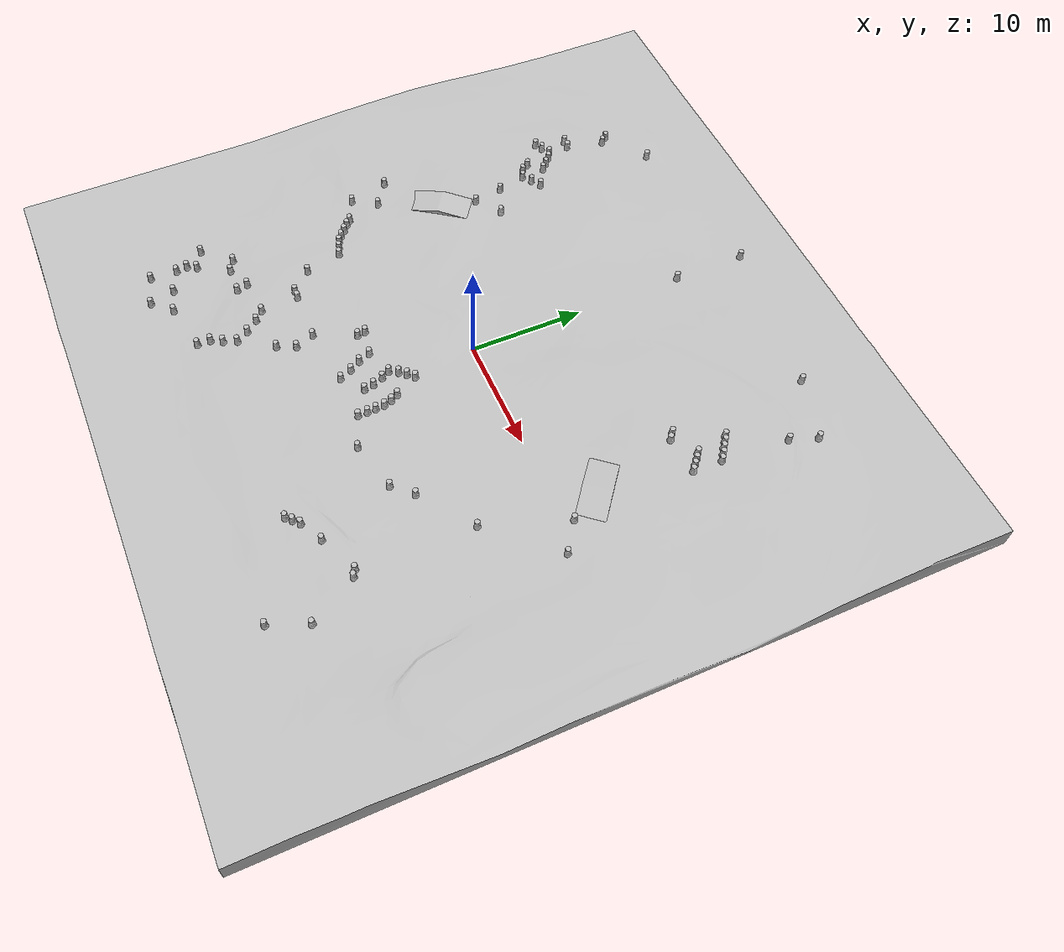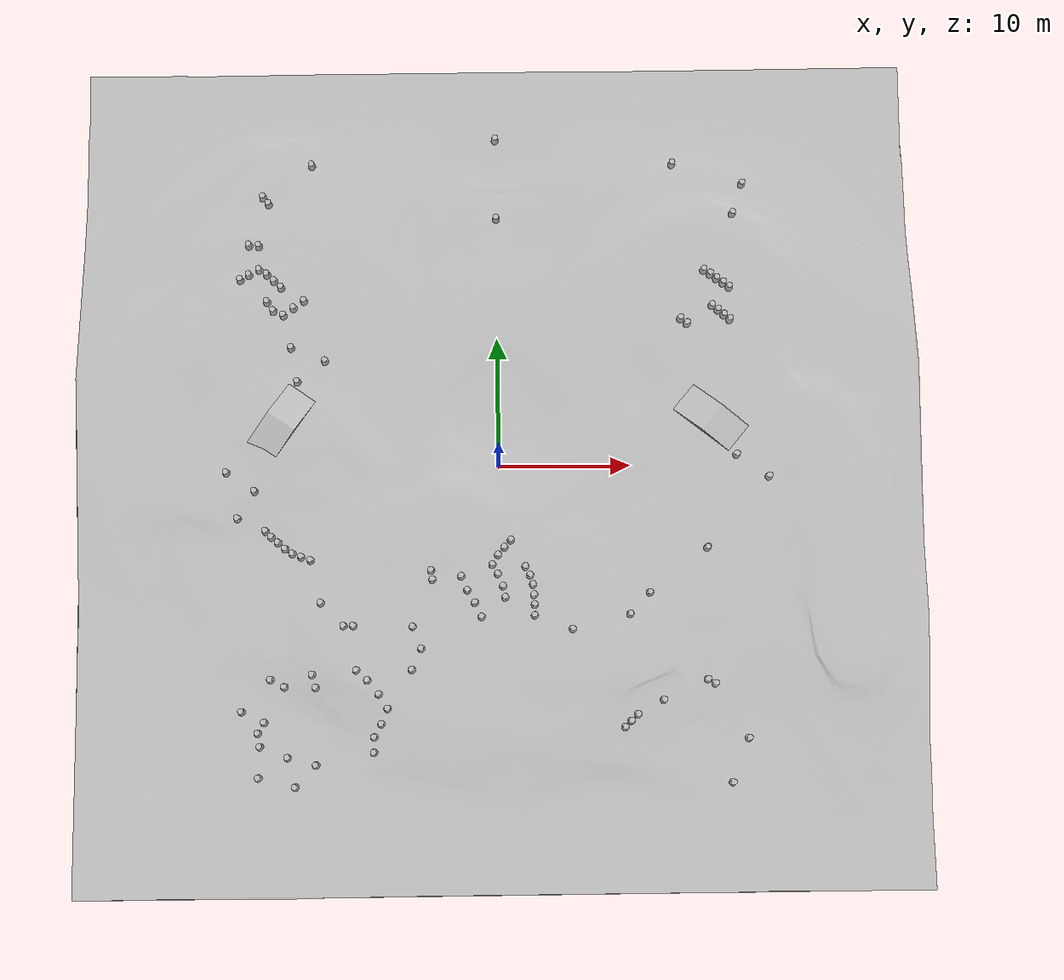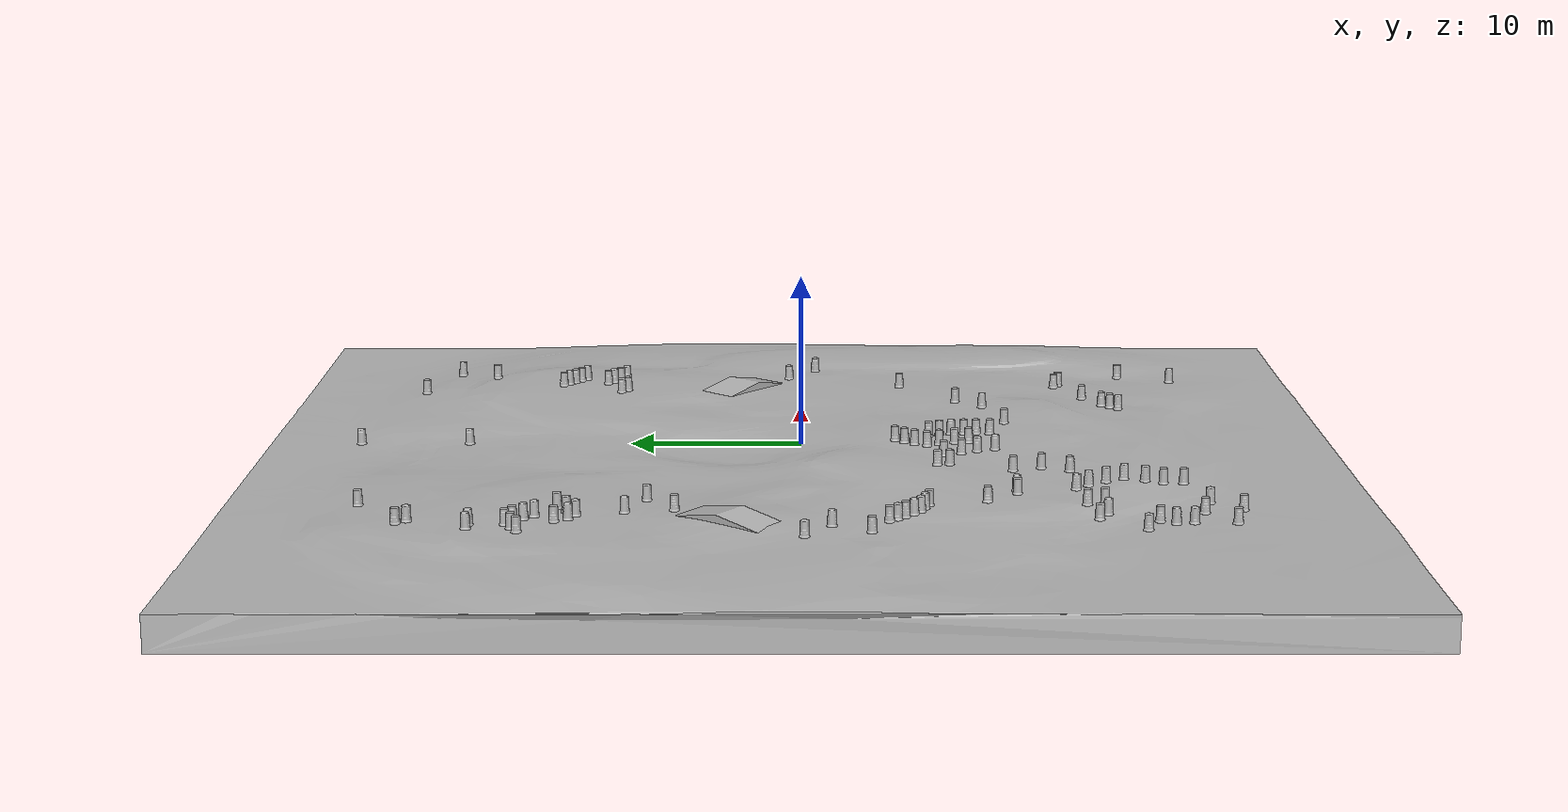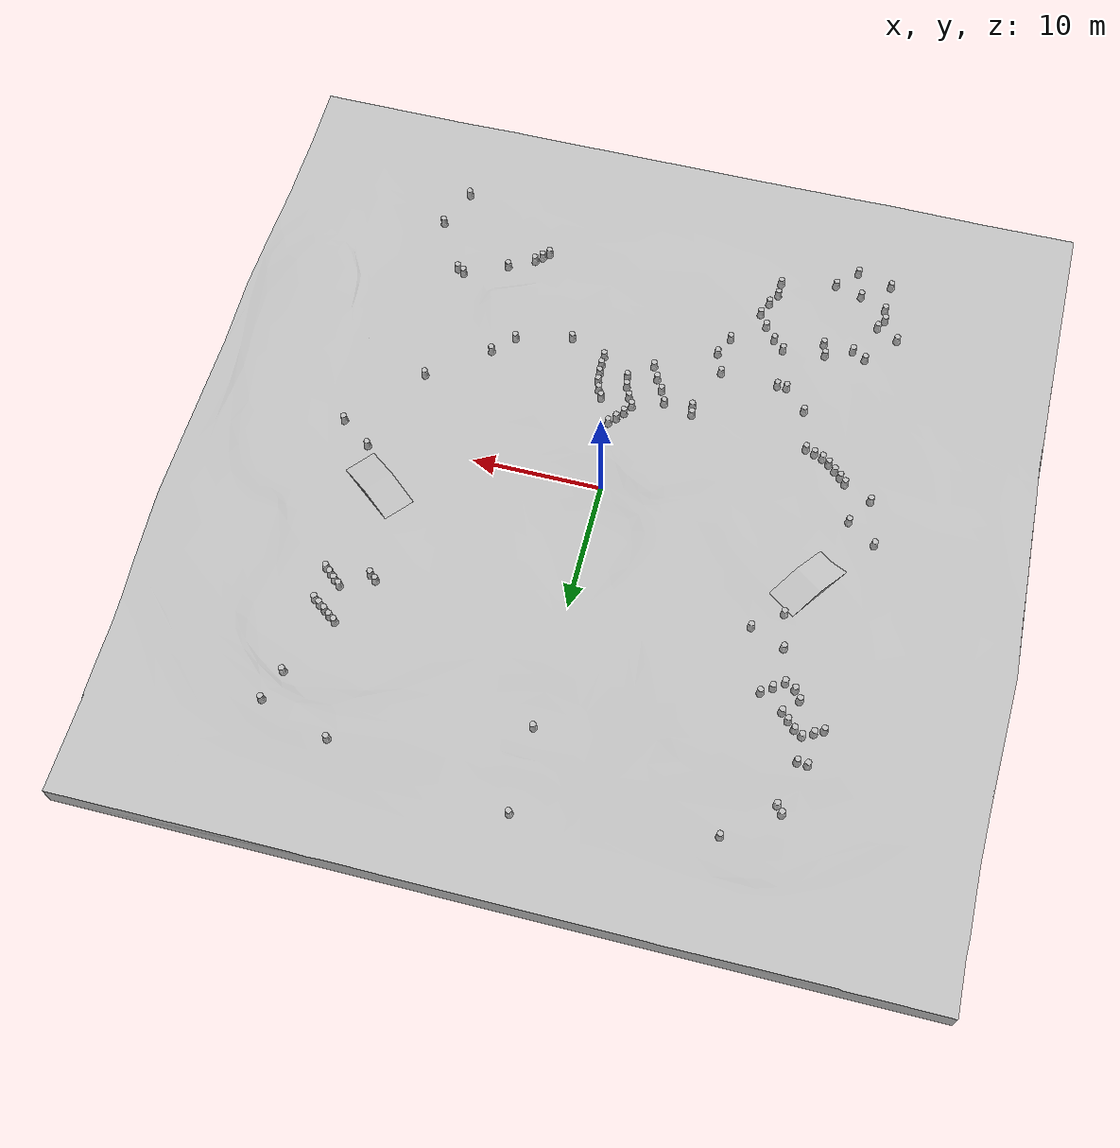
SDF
<?xml version="1.0" ?>
<sdf version="1.4">
  <world name="default">
    <scene>
      <sky>
        <clouds>
          <speed>12</speed>
        </clouds>
      </sky>
       <ambient>1.0 1.0 1.0 1.0</ambient>
       <shadows>true</shadows>
    </scene>

    <gui>
      <camera name="user_camera">
        <pose>0 42.9 25 0 0.8 -1.57</pose>
      </camera>
    </gui>

    <!-- A global light source -->
    <include>
      <uri>model://urdf/models/sun</uri>
    </include>
    <!-- A 3D ground mesh -->
    <include>
      <uri>model://urdf/models/autonav_mesh</uri>
      <pose>0 0 -1.8 0 -0 0</pose>
    </include> -->
    <!-- ramps -->
    <include>
      <uri>model://urdf/models/ramp</uri>
      <name>ramp_0</name> <!-- THE NAME MUST BE UNIQUE-->
      <pose>16.3618 3.6701 -0.172 0.0101 0.0119 -0.670</pose>
    </include>
    <include>
      <uri>model://urdf/models/ramp</uri>
      <name>ramp_1</name> <!-- THE NAME MUST BE UNIQUE-->
      <pose>-16.6108 3.8005 -0.182 0.0022 -0.0186 0.955</pose>
    </include>
    <!-- barrels -->
    <include>
      <uri>model://urdf/models/barrel</uri>
      <name>barrel_0</name> <!-- THE NAME MUST BE UNIQUE-->
      <pose>0 19.6 0 0 -0 0</pose>
    </include>
    <include>
      <uri>model://urdf/models/barrel</uri>
      <name>barrel_1</name> <!-- THE NAME MUST BE UNIQUE-->
      <pose>0 26 0 0 -0 0</pose>
    </include>
    <include>
      <uri>model://urdf/models/barrel</uri>
      <name>barrel_2</name> <!-- THE NAME MUST BE UNIQUE-->
      <pose>13.787 23.878 0 0 -0 0</pose>
    </include>
    <include>
      <uri>model://urdf/models/barrel</uri>
      <name>barrel_3</name> <!-- THE NAME MUST BE UNIQUE-->
      <pose>19.181 22.189 0 0 -0 0</pose>
    </include>
    <include>
      <uri>model://urdf/models/barrel</uri>
      <name>barrel_4</name> <!-- THE NAME MUST BE UNIQUE-->
      <pose>18.388 19.827 0 0 -0 0</pose>
    </include>
    <include>
      <uri>model://urdf/models/barrel</uri>
      <name>barrel_5</name> <!-- THE NAME MUST BE UNIQUE-->
      <pose>16.033 15.308 0 0 -0 0</pose>
    </include>
    <include>
      <uri>model://urdf/models/barrel</uri>
      <name>barrel_6</name> <!-- THE NAME MUST BE UNIQUE-->
      <pose>16.514 14.981 0 0 -0 0</pose>
    </include>
    <include>
      <uri>model://urdf/models/barrel</uri>
      <name>barrel_7</name> <!-- THE NAME MUST BE UNIQUE-->
      <pose>16.988 14.623 0 0 -0 0</pose>
    </include>
    <include>
      <uri>model://urdf/models/barrel</uri>
      <name>barrel_8</name> <!-- THE NAME MUST BE UNIQUE-->
      <pose>17.482 14.271 0 0 -0 0</pose>
    </include>
    <include>
      <uri>model://urdf/models/barrel</uri>
      <name>barrel_9</name> <!-- THE NAME MUST BE UNIQUE-->
      <pose>17.963 13.917 0 0 -0 0</pose>
    </include>
    <include>
      <uri>model://urdf/models/barrel</uri>
      <name>barrel_10</name> <!-- THE NAME MUST BE UNIQUE-->
      <pose>17.932 11.339 0 0 -0 0</pose>
    </include>
    <include>
      <uri>model://urdf/models/barrel</uri>
      <name>barrel_11</name> <!-- THE NAME MUST BE UNIQUE-->
      <pose>17.489 11.714 0 0 -0 0</pose>
    </include>
    <include>
      <uri>model://urdf/models/barrel</uri>
      <name>barrel_12</name> <!-- THE NAME MUST BE UNIQUE-->
      <pose>17.053 12.108 0 0 -0 0</pose>
    </include>
    <include>
      <uri>model://urdf/models/barrel</uri>
      <name>barrel_13</name> <!-- THE NAME MUST BE UNIQUE-->
      <pose>16.587 12.475 0 0 -0 0</pose>
    </include>
    <include>
      <uri>model://urdf/models/barrel</uri>
      <name>barrel_14</name> <!-- THE NAME MUST BE UNIQUE-->
      <pose>14.138 11.459 0 0 -0 0</pose>
    </include>
    <include>
      <uri>model://urdf/models/barrel</uri>
      <name>barrel_15</name> <!-- THE NAME MUST BE UNIQUE-->
      <pose>14.620 11.077 0 0 -0 0</pose>
    </include>
    <include>
      <uri>model://urdf/models/barrel</uri>
      <name>barrel_16</name> <!-- THE NAME MUST BE UNIQUE-->
      <pose>-6.646 -12.089 0 0 -0 0</pose>
    </include>
    <include>
      <uri>model://urdf/models/barrel</uri>
      <name>barrel_17</name> <!-- THE NAME MUST BE UNIQUE-->
      <pose>-6.015 -13.752 0 0 -0 0</pose>
    </include>
    <include>
      <uri>model://urdf/models/barrel</uri>
      <name>barrel_18</name> <!-- THE NAME MUST BE UNIQUE-->
      <pose>18.128 0.756 0 0 -0 0</pose>
    </include>
    <include>
      <uri>model://urdf/models/barrel</uri>
      <name>barrel_19</name> <!-- THE NAME MUST BE UNIQUE-->
      <pose>20.533 -0.955 0 0 -0 0</pose>
    </include>
    <include>
      <uri>model://urdf/models/barrel</uri>
      <name>barrel_20</name> <!-- THE NAME MUST BE UNIQUE-->
      <pose>15.699 -6.357 0 0 -0 0</pose>
    </include>
    <include>
      <uri>model://urdf/models/barrel</uri>
      <name>barrel_21</name> <!-- THE NAME MUST BE UNIQUE-->
      <pose>11.253 -9.721 0 0 -0 0</pose>
    </include>
    <include>
      <uri>model://urdf/models/barrel</uri>
      <name>barrel_22</name> <!-- THE NAME MUST BE UNIQUE-->
      <pose>15.437 -16.289 0 0 -0 0</pose>
    </include>
    <include>
      <uri>model://urdf/models/barrel</uri>
      <name>barrel_23</name> <!-- THE NAME MUST BE UNIQUE-->
      <pose>15.988 -16.610 0 0 -0 0</pose>
    </include>
    <include>
      <uri>model://urdf/models/barrel</uri>
      <name>barrel_24</name> <!-- THE NAME MUST BE UNIQUE-->
      <pose>18.360 -20.697 0 0 -0 0</pose>
    </include>
    <include>
      <uri>model://urdf/models/barrel</uri>
      <name>barrel_25</name> <!-- THE NAME MUST BE UNIQUE-->
      <pose>17.072 -23.944 0 0 -0 0</pose>
    </include>
    <include>
      <uri>model://urdf/models/barrel</uri>
      <name>barrel_26</name> <!-- THE NAME MUST BE UNIQUE-->
      <pose>12.114 -17.789 0 0 -0 0</pose>
    </include>
    <include>
      <uri>model://urdf/models/barrel</uri>
      <name>barrel_27</name> <!-- THE NAME MUST BE UNIQUE-->
      <pose>10.155 -18.839 0 0 -0 0</pose>
    </include>
    <include>
      <uri>model://urdf/models/barrel</uri>
      <name>barrel_28</name> <!-- THE NAME MUST BE UNIQUE-->
      <pose>9.652 -19.311 0 0 -0 0</pose>
    </include>
    <include>
      <uri>model://urdf/models/barrel</uri>
      <name>barrel_29</name> <!-- THE NAME MUST BE UNIQUE-->
      <pose>9.181 -19.775 0 0 -0 0</pose>
    </include>
    <include>
      <uri>model://urdf/models/barrel</uri>
      <name>barrel_30</name> <!-- THE NAME MUST BE UNIQUE-->
      <pose>9.742 -11.323 0 0 -0 0</pose>
    </include>
    <include>
      <uri>model://urdf/models/barrel</uri>
      <name>barrel_31</name> <!-- THE NAME MUST BE UNIQUE-->
      <pose>5.393 -12.401 0 0 -0 0</pose>
    </include>
    <include>
      <uri>model://urdf/models/barrel</uri>
      <name>barrel_32</name> <!-- THE NAME MUST BE UNIQUE-->
      <pose>2.557 -11.338 0 0 -0 0</pose>
    </include>
    <include>
      <uri>model://urdf/models/barrel</uri>
      <name>barrel_33</name> <!-- THE NAME MUST BE UNIQUE-->
      <pose>2.567 -10.527 0 0 -0 0</pose>
    </include>
    <include>
      <uri>model://urdf/models/barrel</uri>
      <name>barrel_34</name> <!-- THE NAME MUST BE UNIQUE-->
      <pose>2.523 -9.782 0 0 -0 0</pose>
    </include>
    <include>
      <uri>model://urdf/models/barrel</uri>
      <name>barrel_35</name> <!-- THE NAME MUST BE UNIQUE-->
      <pose>2.458 -9.008 0 0 -0 0</pose>
    </include>
    <include>
      <uri>model://urdf/models/barrel</uri>
      <name>barrel_36</name> <!-- THE NAME MUST BE UNIQUE-->
      <pose>2.246 -8.299 0 0 -0 0</pose>
    </include>
    <include>
      <uri>model://urdf/models/barrel</uri>
      <name>barrel_37</name> <!-- THE NAME MUST BE UNIQUE-->
      <pose>1.901 -7.644 0 0 -0 0</pose>
    </include>
    <include>
      <uri>model://urdf/models/barrel</uri>
      <name>barrel_38</name> <!-- THE NAME MUST BE UNIQUE-->
      <pose>0.346 -9.950 0 0 -0 0</pose>
    </include>
    <include>
      <uri>model://urdf/models/barrel</uri>
      <name>barrel_39</name> <!-- THE NAME MUST BE UNIQUE-->
      <pose>0.195 -9.101 0 0 -0 0</pose>
    </include>
    <include>
      <uri>model://urdf/models/barrel</uri>
      <name>barrel_40</name> <!-- THE NAME MUST BE UNIQUE-->
      <pose>-0.195 -8.180 0 0 -0 0</pose>
    </include>
    <include>
      <uri>model://urdf/models/barrel</uri>
      <name>barrel_41</name> <!-- THE NAME MUST BE UNIQUE-->
      <pose>-0.592 -7.453 0 0 -0 0</pose>
    </include>
    <include>
      <uri>model://urdf/models/barrel</uri>
      <name>barrel_42</name> <!-- THE NAME MUST BE UNIQUE-->
      <pose>-0.151 -6.725 0 0 -0 0</pose>
    </include>
    <include>
      <uri>model://urdf/models/barrel</uri>
      <name>barrel_43</name> <!-- THE NAME MUST BE UNIQUE-->
      <pose>0.327 -6.152 0 0 -0 0</pose>
    </include>
    <include>
      <uri>model://urdf/models/barrel</uri>
      <name>barrel_44</name> <!-- THE NAME MUST BE UNIQUE-->
      <pose>0.822 -5.608 0 0 -0 0</pose>
    </include>
    <include>
      <uri>model://urdf/models/barrel</uri>
      <name>barrel_45</name> <!-- THE NAME MUST BE UNIQUE-->
      <pose>-1.450 -11.406 0 0 -0 0</pose>
    </include>
    <include>
      <uri>model://urdf/models/barrel</uri>
      <name>barrel_46</name> <!-- THE NAME MUST BE UNIQUE-->
      <pose>-1.947 -10.326 0 0 -0 0</pose>
    </include>
    <include>
      <uri>model://urdf/models/barrel</uri>
      <name>barrel_47</name> <!-- THE NAME MUST BE UNIQUE-->
      <pose>-2.508 -9.378 0 0 -0 0</pose>
    </include>
    <include>
      <uri>model://urdf/models/barrel</uri>
      <name>barrel_48</name> <!-- THE NAME MUST BE UNIQUE-->
      <pose>-2.958 -8.311 0 0 -0 0</pose>
    </include>
    <include>
      <uri>model://urdf/models/barrel</uri>
      <name>barrel_49</name> <!-- THE NAME MUST BE UNIQUE-->
      <pose>-5.127 -8.553 0 0 -0 0</pose>
    </include>
    <include>
      <uri>model://urdf/models/barrel</uri>
      <name>barrel_50</name> <!-- THE NAME MUST BE UNIQUE-->
      <pose>-5.232 -7.852 0 0 -0 0</pose>
    </include>
    <include>
      <uri>model://urdf/models/barrel</uri>
      <name>barrel_51</name> <!-- THE NAME MUST BE UNIQUE-->
      <pose>-6.728 -15.316 0 0 -0 0</pose>
    </include>
    <include>
      <uri>model://urdf/models/barrel</uri>
      <name>barrel_52</name> <!-- THE NAME MUST BE UNIQUE-->
      <pose>-10.898 -15.301 0 0 -0 0</pose>
    </include>
    <include>
      <uri>model://urdf/models/barrel</uri>
      <name>barrel_53</name> <!-- THE NAME MUST BE UNIQUE-->
      <pose>-10.073 -16.053 0 0 -0 0</pose>
    </include>
    <include>
      <uri>model://urdf/models/barrel</uri>
      <name>barrel_54</name> <!-- THE NAME MUST BE UNIQUE-->
      <pose>-9.219 -17.113 0 0 -0 0</pose>
    </include>
    <include>
      <uri>model://urdf/models/barrel</uri>
      <name>barrel_55</name> <!-- THE NAME MUST BE UNIQUE-->
      <pose>-8.555 -18.197 0 0 -0 0</pose>
    </include>
    <include>
      <uri>model://urdf/models/barrel</uri>
      <name>barrel_56</name> <!-- THE NAME MUST BE UNIQUE-->
      <pose>-9.015 -19.338 0 0 -0 0</pose>
    </include>
    <include>
      <uri>model://urdf/models/barrel</uri>
      <name>barrel_57</name> <!-- THE NAME MUST BE UNIQUE-->
      <pose>-9.546 -20.302 0 0 -0 0</pose>
    </include>
    <include>
      <uri>model://urdf/models/barrel</uri>
      <name>barrel_58</name> <!-- THE NAME MUST BE UNIQUE-->
      <pose>-9.569 -21.431 0 0 -0 0</pose>
    </include>
    <include>
      <uri>model://urdf/models/barrel</uri>
      <name>barrel_59</name> <!-- THE NAME MUST BE UNIQUE-->
      <pose>-13.875 -22.319 0 0 -0 0</pose>
    </include>
    <include>
      <uri>model://urdf/models/barrel</uri>
      <name>barrel_60</name> <!-- THE NAME MUST BE UNIQUE-->
      <pose>-16.001 -21.750 0 0 -0 0</pose>
    </include>
    <include>
      <uri>model://urdf/models/barrel</uri>
      <name>barrel_61</name> <!-- THE NAME MUST BE UNIQUE-->
      <pose>-15.407 -23.926 0 0 -0 0</pose>
    </include>
    <include>
      <uri>model://urdf/models/barrel</uri>
      <name>barrel_62</name> <!-- THE NAME MUST BE UNIQUE-->
      <pose>-18.160 -23.218 0 0 -0 0</pose>
    </include>
    <include>
      <uri>model://urdf/models/barrel</uri>
      <name>barrel_63</name> <!-- THE NAME MUST BE UNIQUE-->
      <pose>-18.069 -20.910 0 0 -0 0</pose>
    </include>
    <include>
      <uri>model://urdf/models/barrel</uri>
      <name>barrel_64</name> <!-- THE NAME MUST BE UNIQUE-->
      <pose>-18.222 -19.921 0 0 -0 0</pose>
    </include>
    <include>
      <uri>model://urdf/models/barrel</uri>
      <name>barrel_65</name> <!-- THE NAME MUST BE UNIQUE-->
      <pose>-17.763 -19.123 0 0 -0 0</pose>
    </include>
    <include>
      <uri>model://urdf/models/barrel</uri>
      <name>barrel_66</name> <!-- THE NAME MUST BE UNIQUE-->
      <pose>-19.446 -18.306 0 0 -0 0</pose>
    </include>
    <include>
      <uri>model://urdf/models/barrel</uri>
      <name>barrel_67</name> <!-- THE NAME MUST BE UNIQUE-->
      <pose>-17.311 -15.951 0 0 -0 0</pose>
    </include>
    <include>
      <uri>model://urdf/models/barrel</uri>
      <name>barrel_68</name> <!-- THE NAME MUST BE UNIQUE-->
      <pose>-16.262 -16.501 0 0 -0 0</pose>
    </include>
    <include>
      <uri>model://urdf/models/barrel</uri>
      <name>barrel_69</name> <!-- THE NAME MUST BE UNIQUE-->
      <pose>-13.932 -16.579 0 0 -0 0</pose>
    </include>
    <include>
      <uri>model://urdf/models/barrel</uri>
      <name>barrel_70</name> <!-- THE NAME MUST BE UNIQUE-->
      <pose>-14.197 -15.599 0 0 -0 0</pose>
    </include>
    <include>
      <uri>model://urdf/models/barrel</uri>
      <name>barrel_71</name> <!-- THE NAME MUST BE UNIQUE-->
      <pose>-11.110 -11.974 0 0 -0 0</pose>
    </include>
    <include>
      <uri>model://urdf/models/barrel</uri>
      <name>barrel_72</name> <!-- THE NAME MUST BE UNIQUE-->
      <pose>-11.848 -11.966 0 0 -0 0</pose>
    </include>
    <include>
      <uri>model://urdf/models/barrel</uri>
      <name>barrel_73</name> <!-- THE NAME MUST BE UNIQUE-->
      <pose>-13.557 -10.210 0 0 -0 0</pose>
    </include>
    <include>
      <uri>model://urdf/models/barrel</uri>
      <name>barrel_74</name> <!-- THE NAME MUST BE UNIQUE-->
      <pose>-14.905 13.208 0 0 -0 0</pose>
    </include>
    <include>
      <uri>model://urdf/models/barrel</uri>
      <name>barrel_75</name> <!-- THE NAME MUST BE UNIQUE-->
      <pose>-15.701 12.643 0 0 -0 0</pose>
    </include>
    <include>
      <uri>model://urdf/models/barrel</uri>
      <name>barrel_76</name> <!-- THE NAME MUST BE UNIQUE-->
      <pose>-16.487 12.075 0 0 -0 0</pose>
    </include>
    <include>
      <uri>model://urdf/models/barrel</uri>
      <name>barrel_77</name> <!-- THE NAME MUST BE UNIQUE-->
      <pose>-17.260 12.433 0 0 -0 0</pose>
    </include>
    <include>
      <uri>model://urdf/models/barrel</uri>
      <name>barrel_78</name> <!-- THE NAME MUST BE UNIQUE-->
      <pose>-17.738 13.150 0 0 -0 0</pose>
    </include>
    <include>
      <uri>model://urdf/models/barrel</uri>
      <name>barrel_79</name> <!-- THE NAME MUST BE UNIQUE-->
      <pose>-16.675 14.280 0 0 -0 0</pose>
    </include>
    <include>
      <uri>model://urdf/models/barrel</uri>
      <name>barrel_80</name> <!-- THE NAME MUST BE UNIQUE-->
      <pose>-17.220 14.819 0 0 -0 0</pose>
    </include>
    <include>
      <uri>model://urdf/models/barrel</uri>
      <name>barrel_81</name> <!-- THE NAME MUST BE UNIQUE-->
      <pose>-17.774 15.348 0 0 -0 0</pose>
    </include>
    <include>
      <uri>model://urdf/models/barrel</uri>
      <name>barrel_82</name> <!-- THE NAME MUST BE UNIQUE-->
      <pose>-18.371 15.709 0 0 -0 0</pose>
    </include>
    <include>
      <uri>model://urdf/models/barrel</uri>
      <name>barrel_83</name> <!-- THE NAME MUST BE UNIQUE-->
      <pose>-19.155 15.313 0 0 -0 0</pose>
    </include>
    <include>
      <uri>model://urdf/models/barrel</uri>
      <name>barrel_84</name> <!-- THE NAME MUST BE UNIQUE-->
      <pose>-19.832 14.947 0 0 -0 0</pose>
    </include>
    <include>
      <uri>model://urdf/models/barrel</uri>
      <name>barrel_85</name> <!-- THE NAME MUST BE UNIQUE-->
      <pose>-18.418 17.637 0 0 -0 0</pose>
    </include>
    <include>
      <uri>model://urdf/models/barrel</uri>
      <name>barrel_86</name> <!-- THE NAME MUST BE UNIQUE-->
      <pose>-19.178 17.690 0 0 -0 0</pose>
    </include>
    <include>
      <uri>model://urdf/models/barrel</uri>
      <name>barrel_87</name> <!-- THE NAME MUST BE UNIQUE-->
      <pose>-17.666 21.003 0 0 -0 0</pose>
    </include>
    <include>
      <uri>model://urdf/models/barrel</uri>
      <name>barrel_88</name> <!-- THE NAME MUST BE UNIQUE-->
      <pose>-18.109 21.543 0 0 -0 0</pose>
    </include>
    <include>
      <uri>model://urdf/models/barrel</uri>
      <name>barrel_89</name> <!-- THE NAME MUST BE UNIQUE-->
      <pose>-14.324 24.075 0 0 -0 0</pose>
    </include>
    <include>
      <uri>model://urdf/models/barrel</uri>
      <name>barrel_90</name> <!-- THE NAME MUST BE UNIQUE-->
      <pose>-15.872 9.495 0 0 -0 0</pose>
    </include>
    <include>
      <uri>model://urdf/models/barrel</uri>
      <name>barrel_91</name> <!-- THE NAME MUST BE UNIQUE-->
      <pose>-13.266 8.423 0 0 -0 0</pose>
    </include>
    <include>
      <uri>model://urdf/models/barrel</uri>
      <name>barrel_92</name> <!-- THE NAME MUST BE UNIQUE-->
      <pose>-15.389 6.831 0 0 -0 0</pose>
    </include>
    <include>
      <uri>model://urdf/models/barrel</uri>
      <name>barrel_93</name> <!-- THE NAME MUST BE UNIQUE-->
      <pose>-20.761 -0.194 0 0 -0 0</pose>
    </include>
    <include>
      <uri>model://urdf/models/barrel</uri>
      <name>barrel_94</name> <!-- THE NAME MUST BE UNIQUE-->
      <pose>-18.601 -1.647 0 0 -0 0</pose>
    </include>
    <include>
      <uri>model://urdf/models/barrel</uri>
      <name>barrel_95</name> <!-- THE NAME MUST BE UNIQUE-->
      <pose>-19.876 -3.735 0 0 -0 0</pose>
    </include>
    <include>
      <uri>model://urdf/models/barrel</uri>
      <name>barrel_96</name> <!-- THE NAME MUST BE UNIQUE-->
      <pose>-17.743 -4.719 0 0 -0 0</pose>
    </include>
    <include>
      <uri>model://urdf/models/barrel</uri>
      <name>barrel_97</name> <!-- THE NAME MUST BE UNIQUE-->
      <pose>-17.299 -5.169 0 0 -0 0</pose>
    </include>
    <include>
      <uri>model://urdf/models/barrel</uri>
      <name>barrel_98</name> <!-- THE NAME MUST BE UNIQUE-->
      <pose>-16.793 -5.601 0 0 -0 0</pose>
    </include>
    <include>
      <uri>model://urdf/models/barrel</uri>
      <name>barrel_99</name> <!-- THE NAME MUST BE UNIQUE-->
      <pose>-16.253 -6.087 0 0 -0 0</pose>
    </include>
    <include>
      <uri>model://urdf/models/barrel</uri>
      <name>barrel_100</name> <!-- THE NAME MUST BE UNIQUE-->
      <pose>-15.706 -6.467 0 0 -0 0</pose>
    </include>
    <include>
      <uri>model://urdf/models/barrel</uri>
      <name>barrel_101</name> <!-- THE NAME MUST BE UNIQUE-->
      <pose>-15.036 -6.713 0 0 -0 0</pose>
    </include>
    <include>
      <uri>model://urdf/models/barrel</uri>
      <name>barrel_102</name> <!-- THE NAME MUST BE UNIQUE-->
      <pose>-14.330 -6.974 0 0 -0 0</pose>
    </include>
    <physics type="ode">
      <max_step_size>0.0005</max_step_size>
      <real_time_update_rate>2000</real_time_update_rate>
    </physics>
  </world>
</sdf>

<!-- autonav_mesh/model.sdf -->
<sdf version="1.5">
  <model name="autonav_mesh">
    <static>true</static>
    <link name="link">
      <collision name="collision">
        <geometry>
          <mesh>
            <uri>model://autonav_mesh/meshes/autonav_world.dae</uri>
            <scale>1 1 1</scale>
          </mesh>
        </geometry>
        <surface>
          <friction>
            <ode>
              <mu>100</mu>
              <mu2>50</mu2>
            </ode>
          </friction>
        </surface>
      </collision>
      <visual name="visual">
        <cast_shadows>false</cast_shadows>
        <geometry>
          <mesh>
            <uri>model://autonav_mesh/meshes/autonav_world.dae</uri>
            <scale>1 1 1</scale>
          </mesh>
        </geometry>
        <material>
          <script>
            <uri>model://urdf/gazebo.material</uri>
            <name>Gazebo/Texture_autonav</name>
          </script>
        </material>
      </visual>
    </link>
  </model>
</sdf>

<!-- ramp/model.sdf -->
<sdf version="1.5">
  <model name='ramp'>
    <static>true</static>
    <link name='link'>
      <collision name='collision'>
        <geometry>
          <mesh>
            <uri>model://ramp/meshes/ramp.dae</uri>
            <scale>1 1 1</scale>
          </mesh>
        </geometry>
        <max_contacts>10</max_contacts>
        <surface>
          <friction>
            <ode>
              <mu>100</mu>
              <mu2>50</mu2>
            </ode>
          </friction>
        </surface>
      </collision>
      <visual name='visual'>
        <geometry>
          <mesh>
            <uri>model://ramp/meshes/ramp.dae</uri>
            <scale>1 1 1</scale>
          </mesh>
        </geometry>
      </visual>
      <self_collide>0</self_collide>
      <kinematic>0</kinematic>
    </link>
  </model>
</sdf>

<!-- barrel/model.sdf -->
<sdf version="1.5">
  <model name='construction_barrel'>
    <link name='link'>
      <gravity>1</gravity>
      <inertial>
        <mass>500</mass>
        <inertia>
          <ixx>51.2096</ixx>
          <iyy>51.2096</iyy>
          <izz>25</izz>
          <ixy>0</ixy>
          <ixz>0</ixz>
          <iyz>0</iyz>
        </inertia>
      </inertial>
      <collision name='collision'>
        <geometry>
          <mesh>
            <uri>model://barrel/meshes/barrel.dae</uri>
            <scale>1 1 1</scale>
          </mesh>
        </geometry>
        <max_contacts>10</max_contacts>
        <surface>
          <contact>
            <ode/>
          </contact>
          <bounce/>
          <friction>
            <torsional>
              <ode/>
            </torsional>
            <ode/>
          </friction>
        </surface>
      </collision>
      <visual name='visual'>
        <geometry>
          <mesh>
            <uri>model://barrel/meshes/barrel.dae</uri>
            <scale>1 1 1</scale>
          </mesh>
        </geometry>
      </visual>
      <self_collide>0</self_collide>
      <kinematic>0</kinematic>
    </link>
  </model>
</sdf>
